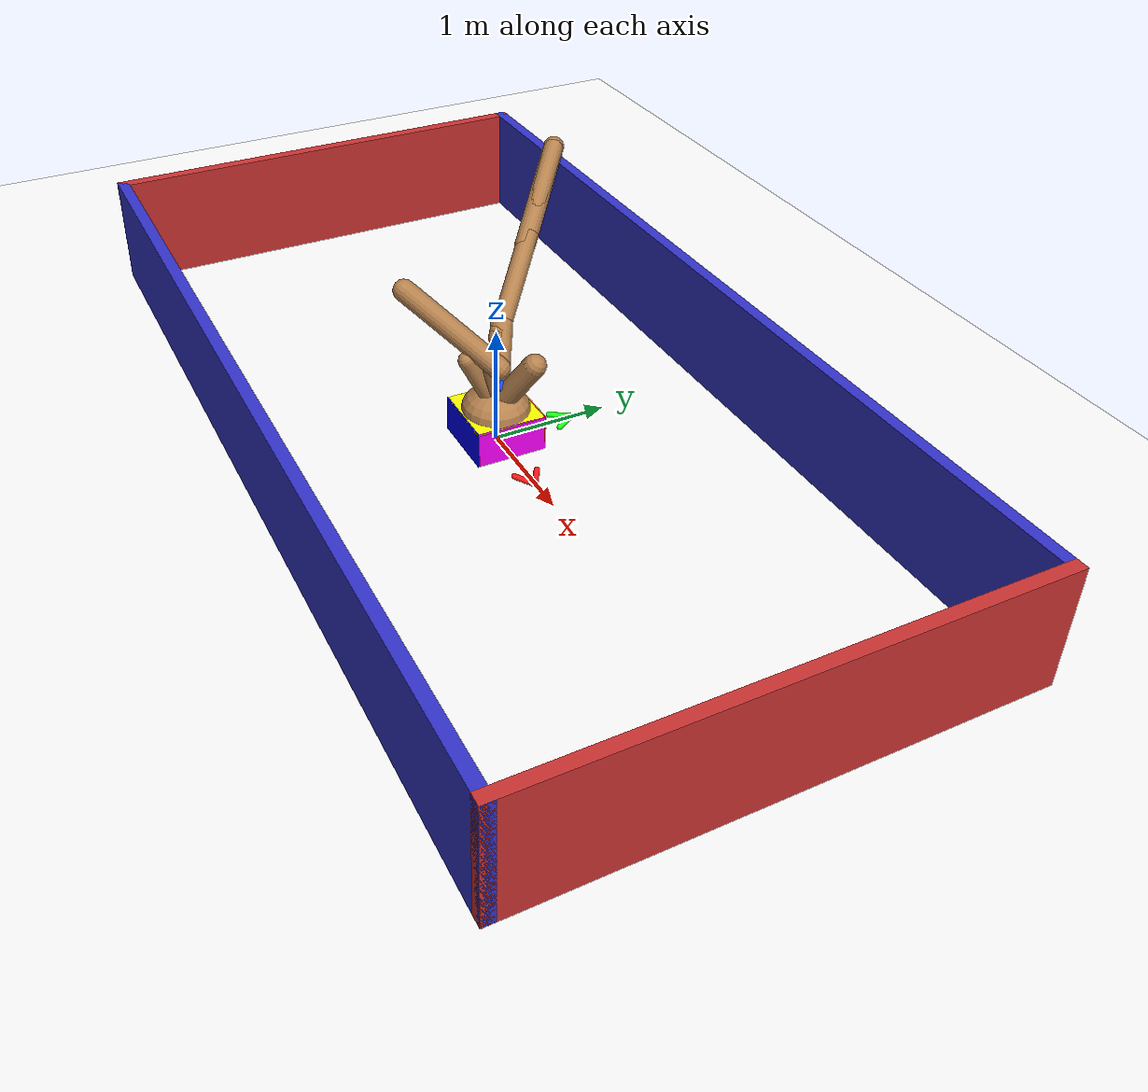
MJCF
<mujoco model="dex-gripper">
  <asset>
    <texture name="skybox" type="skybox" builtin="gradient" rgb1=".2 .3 .4" rgb2="0 0 0" width="800" height="800" mark="random" markrgb="1 1 1"/>
    <texture name="grid" type="2d" builtin="checker" rgb1=".2 .1 .2" rgb2=".3 .2 .3" width="300" height="300" mark="edge" markrgb=".3 .2 .3"/>
    <material name="grid" texture="grid" texrepeat="1 1" texuniform="true" reflectance=".2"/>
    <material name="self" rgba=".7 .5 .3 1"/>
  </asset>
  <visual>
    <headlight ambient=".4 .4 .4" diffuse=".8 .8 .8" specular="0.1 0.1 0.1"/>
    <map znear=".001"/>
    <quality shadowsize="16384"/>
  </visual>
  <compiler coordinate="local" angle="degree" inertiafromgeom="true"/>
  <option integrator="RK4" timestep="0.01"/>
  <default>
    <joint armature="1" damping="1" limited="true"/>
    <geom conaffinity="0" condim="3" density="5.0" friction="1 0.5 0.5" margin="0.01" rgba=".7 .5 .3 1"/>
  </default>
  <worldbody>
    <light cutoff="100" diffuse="1 1 1" dir="0.3 0 -1.3" directional="true" exponent="1" pos="-30 0 130" specular=".1 .1 .1"/>
    <geom conaffinity="1" condim="3" name="floor" pos="0 0 0" rgba="1 1 1 1" size="200 200 .125" type="plane" material="grid"/>
    <!-- Fixed gripper base: no root slide joints anymore -->
    <body name="0" pos="0 0 0.3" gravcomp="1">
      <camera name="track" mode="fixed" pos="0 10 5" quat="0 0 0.547 0.892"/>
      <geom pos="0 0 0" size="0.290028 0.280005 0.173145" type="ellipsoid"/>
      <!-- Arm 1: flipped upward -->
      <body name="1" pos="0 0 0" gravcomp="1">
        <joint axis="-0.707107 0.707107 0" name="1_joint" pos="0 0 0" range="-45 45" type="hinge" damping="0"/>
        <geom fromto="-0.057436 -0.04092 -0.102902 0.279083 0.198829 0.5" size="0.096777 0.096777 0.096777" type="capsule"/>
      </body>
      <!-- Arm 2: flipped upward -->
      <body name="2" pos="0 0 0" gravcomp="1">
        <joint axis="-0.707107 -0.707107 0" name="2_joint" pos="0 0 0" range="-45 45" type="hinge" damping="0"/>
        <geom fromto="0.090691 -0.055638 -0.115369 -0.393045 0.241131 0.5" size="0.093533 0.093533 0.093533" type="capsule"/>
        <body name="12" pos="-0.393045 0.241131 0.5" gravcomp="1">
          <joint axis="-0.707107 -0.707107 0" name="12_joint" pos="0 0 0" range="-45 45" type="hinge" damping="0"/>
          <geom fromto="0.047272 -0.04741 -0.048483 -0.48751 0.488932 0.5" size="0.083222 0.083222 0.083222" type="capsule"/>
        </body>
        <body name="22" pos="-0.393045 0.241131 0.5" gravcomp="1">
          <joint axis="-0.707107 -0.707107 0" name="22_joint" pos="0 0 0" range="-45 45" type="hinge" damping="0"/>
          <geom fromto="0.066437 -0.065646 -0.066976 -0.495972 0.490074 0.5" size="0.080241 0.080241 0.080241" type="capsule"/>
          <body name="122" pos="-0.495972 0.490074 0.5" gravcomp="1">
            <joint axis="-0.707107 -0.707107 0" name="122_joint" pos="0 0 0" range="-45 45" type="hinge" damping="0"/>
            <geom fromto="0.04615 -0.046694 -0.050782 -0.454396 0.459754 0.5" size="0.082917 0.082917 0.082917" type="capsule"/>
          </body>
          <body name="222" pos="-0.495972 0.490074 0.5" gravcomp="1">
            <joint axis="-0.707107 -0.707107 0" name="222_joint" pos="0 0 0" range="-45 45" type="hinge" damping="0"/>
            <geom fromto="0.070413 -0.069909 -0.073086 -0.481714 0.478267 0.5" size="0.088437 0.088437 0.088437" type="capsule"/>
          </body>
        </body>
      </body>
      <!-- Arm 3: flipped upward -->
      <body name="3" pos="0 0 0" gravcomp="1">
        <joint axis="0.707107 -0.707107 0" name="3_joint" pos="0 0 0" range="-45 45" type="hinge" damping="0"/>
        <geom fromto="-0.003206 0.004223 -0.026327 0.060894 -0.080208 0.5" size="0.065621 0.065621 0.065621" type="capsule"/>
        <body name="13" pos="0.060894 -0.080208 0.5" gravcomp="1">
          <joint axis="0.707107 -0.707107 0" name="13_joint" pos="0 0 0" range="-45 45" type="hinge" damping="0"/>
          <geom fromto="0.055119 0.055119 -0.055123 -0.499964 -0.499967 0.5" size="0.091053 0.091053 0.091053" type="capsule"/>
        </body>
      </body>
      <!-- Arm 4: flipped upward -->
      <body name="4" pos="0 0 0" gravcomp="1">
        <joint axis="0.707107 0.707107 0" name="4_joint" pos="0 0 0" range="-45 45" type="hinge" damping="0"/>
        <geom fromto="0.001391 0.01531 -0.031294 -0.022231 -0.24462 0.5" size="0.070052 0.070052 0.070052" type="capsule"/>
      </body>
    </body>
    <!-- Box starts above the gripper -->
    <body name="box" pos="0 0 0">
      <freejoint name="box_joint"/>
      <!-- Top (Yellow) -->
      <geom name="box_top" type="box" pos="0 0 0.295" size="0.3 0.3 0.005" rgba="1 1 0 1" density="10" friction="2.5 0.1 0.05" contype="1" conaffinity="1"/>
      <!-- Bottom (White) -->
      <geom name="box_bottom" type="box" pos="0 0 -0.295" size="0.3 0.3 0.005" rgba="1 1 1 1" density="10" friction="2.5 0.1 0.05" contype="1" conaffinity="1"/>
      <!-- Front (Red) -->
      <geom name="box_front" type="box" pos="0 0.295 0" size="0.3 0.005 0.3" rgba="1 0 0 1" density="10" friction="2.5 0.1 0.05" contype="1" conaffinity="1"/>
      <!-- Back (Blue) -->
      <geom name="box_back" type="box" pos="0 -0.295 0" size="0.3 0.005 0.3" rgba="0 0 1 1" density="10" friction="2.5 0.1 0.05" contype="1" conaffinity="1"/>
      <!-- Left (Green) -->
      <geom name="box_left" type="box" pos="-0.295 0 0" size="0.005 0.3 0.3" rgba="0 1 0 1" density="10" friction="2.5 0.1 0.05" contype="1" conaffinity="1"/>
      <!-- Right (Magenta) -->
      <geom name="box_right" type="box" pos="0.295 0 0" size="0.005 0.3 0.3" rgba="1 0 1 1" density="10" friction="2.5 0.1 0.05" contype="1" conaffinity="1"/>
    </body>
    <!-- RGB arrows visualize the target orientation and never participate in collisions. -->
    <body name="goal_orientation_frame" pos="0 0 0">
      <!-- Goal X axis (red). -->
      <geom name="goal_axis_x_shaft" type="capsule" fromto="0 0 0 0.7 0 0" size="0.018" rgba="1 0.1 0.1 0.9" contype="0" conaffinity="0"/>
      <geom name="goal_axis_x_head_pos" type="capsule" fromto="0.7 0 0 0.54 0.1 0" size="0.025" rgba="1 0.1 0.1 0.9" contype="0" conaffinity="0"/>
      <geom name="goal_axis_x_head_neg" type="capsule" fromto="0.7 0 0 0.54 -0.1 0" size="0.025" rgba="1 0.1 0.1 0.9" contype="0" conaffinity="0"/>
      <!-- Goal Y axis (green). -->
      <geom name="goal_axis_y_shaft" type="capsule" fromto="0 0 0 0 0.7 0" size="0.018" rgba="0.1 1 0.1 0.9" contype="0" conaffinity="0"/>
      <geom name="goal_axis_y_head_pos" type="capsule" fromto="0 0.7 0 0.1 0.54 0" size="0.025" rgba="0.1 1 0.1 0.9" contype="0" conaffinity="0"/>
      <geom name="goal_axis_y_head_neg" type="capsule" fromto="0 0.7 0 -0.1 0.54 0" size="0.025" rgba="0.1 1 0.1 0.9" contype="0" conaffinity="0"/>
      <!-- Goal Z axis (blue). -->
      <geom name="goal_axis_z_shaft" type="capsule" fromto="0 0 0 0 0 0.7" size="0.018" rgba="0.1 0.3 1 0.9" contype="0" conaffinity="0"/>
      <geom name="goal_axis_z_head_pos" type="capsule" fromto="0 0 0.7 0.1 0 0.54" size="0.025" rgba="0.1 0.3 1 0.9" contype="0" conaffinity="0"/>
      <geom name="goal_axis_z_head_neg" type="capsule" fromto="0 0 0.7 -0.1 0 0.54" size="0.025" rgba="0.1 0.3 1 0.9" contype="0" conaffinity="0"/>
    </body>
    <body name="box_walls" pos="0 0 0">
      <geom name="wall_left" type="box" pos="-4.0 0 0.5" size="0.05 2.05 0.5" rgba="0.8 0.2 0.2 1" contype="1" conaffinity="1"/>
      <geom name="wall_right" type="box" pos="4.0 0 0.5" size="0.05 2.05 0.5" rgba="0.8 0.2 0.2 1" contype="1" conaffinity="1"/>
      <geom name="wall_front" type="box" pos="0 2.0 0.5" size="4.05 0.05 0.5" rgba="0.2 0.2 0.8 1" contype="1" conaffinity="1"/>
      <geom name="wall_back" type="box" pos="0 -2.0 0.5" size="4.05 0.05 0.5" rgba="0.2 0.2 0.8 1" contype="1" conaffinity="1"/>
    </body>
  </worldbody>
  <actuator>
    <!-- Only the finger joints remain actuated -->
    <motor ctrllimited="true" ctrlrange="-1.0 1.0" joint="1_joint" gear="27.876441" name="1_joint"/>
    <motor ctrllimited="true" ctrlrange="-1.0 1.0" joint="2_joint" gear="74.613395" name="2_joint"/>
    <motor ctrllimited="true" ctrlrange="-1.0 1.0" joint="3_joint" gear="65.796664" name="3_joint"/>
    <motor ctrllimited="true" ctrlrange="-1.0 1.0" joint="4_joint" gear="105.914813" name="4_joint"/>
    <motor ctrllimited="true" ctrlrange="-1.0 1.0" joint="12_joint" gear="64.97354" name="12_joint"/>
    <motor ctrllimited="true" ctrlrange="-1.0 1.0" joint="22_joint" gear="52.928713" name="22_joint"/>
    <motor ctrllimited="true" ctrlrange="-1.0 1.0" joint="122_joint" gear="60.647571" name="122_joint"/>
    <motor ctrllimited="true" ctrlrange="-1.0 1.0" joint="13_joint" gear="83.694693" name="13_joint"/>
    <motor ctrllimited="true" ctrlrange="-1.0 1.0" joint="222_joint" gear="32.56625" name="222_joint"/>
  </actuator>
</mujoco>
